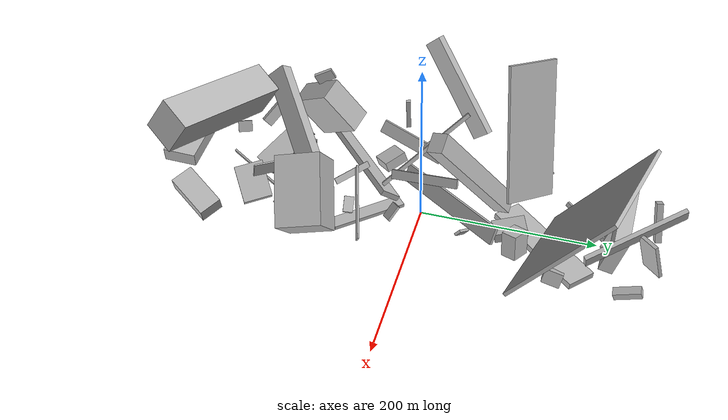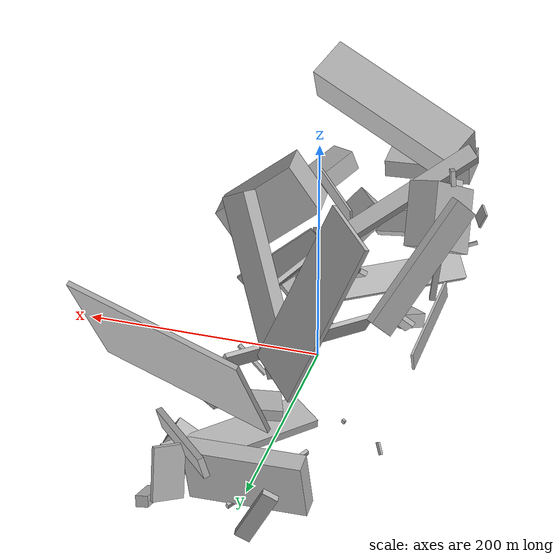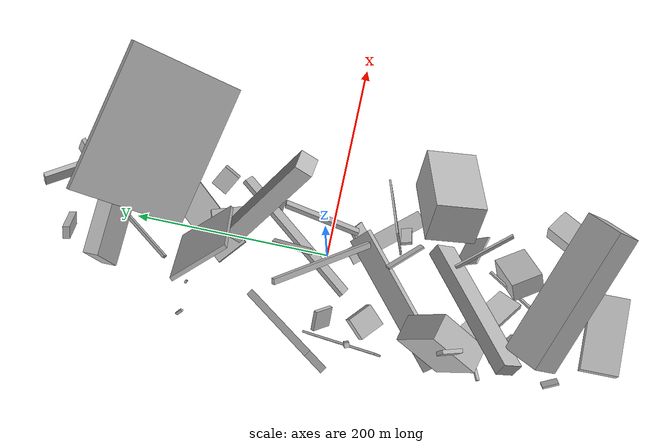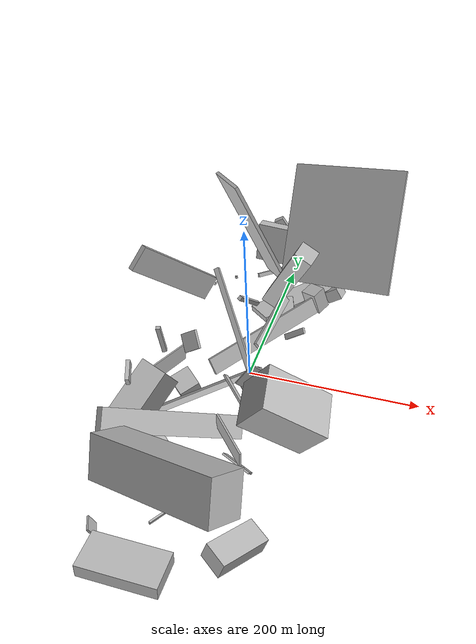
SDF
<sdf version="1.6">
 <world name="default">
  <model name="building_7">
   <static>0</static>
   <pose>41.45888832227331 120.11826827299603 32.789335386937736 -1.3782574865889343 0.18848480692037026 -2.0500685810273795</pose>
   <link name="link">
    <gravity>0</gravity>
    <pose>0 0 10.5 0 0 0</pose>
    <collision name="collision"><geometry><box><size>18 28 21</size></box></geometry></collision>
    <visual name="visual">
     <cast_shadows>0</cast_shadows>
     <geometry><box><size>18 28 21</size></box></geometry>
     <material>
      <script>
       <uri>model://HANNAS_wall/materials/scripts</uri>
       <uri>model://HANNAS_wall/materials/textures</uri>
       <name>vrc/HANNAS_wall</name>
      </script>
     </material>
    </visual>
   </link>
  </model>
  <model name="building_8">
   <static>0</static>
   <pose>34.0836836755247 208.5707553289479 33.629238351588484 1.2905708604022932 0.3872400095972703 -2.054553452792674</pose>
   <link name="link">
    <gravity>0</gravity>
    <pose>0 0 17.5 0 0 0</pose>
    <collision name="collision"><geometry><box><size>11 5 35</size></box></geometry></collision>
    <visual name="visual">
     <cast_shadows>0</cast_shadows>
     <geometry><box><size>11 5 35</size></box></geometry>
     <material>
      <script>
       <uri>model://HANNAS_wall/materials/scripts</uri>
       <uri>model://HANNAS_wall/materials/textures</uri>
       <name>vrc/HANNAS_wall</name>
      </script>
     </material>
    </visual>
   </link>
  </model>
  <model name="building_12">
   <static>0</static>
   <pose>-4.96735389371024 51.39790075821095 64.99824291135502 0.41725744702888623 -0.7304555457033071 0.8065749185657416</pose>
   <link name="link">
    <gravity>0</gravity>
    <pose>0 0 27.5 0 0 0</pose>
    <collision name="collision"><geometry><box><size>5 4 55</size></box></geometry></collision>
    <visual name="visual">
     <cast_shadows>0</cast_shadows>
     <geometry><box><size>5 4 55</size></box></geometry>
     <material>
      <script>
       <uri>model://HANNAS_wall/materials/scripts</uri>
       <uri>model://HANNAS_wall/materials/textures</uri>
       <name>vrc/HANNAS_wall</name>
      </script>
     </material>
    </visual>
   </link>
  </model>
  <model name="building_15">
   <static>0</static>
   <pose>25.864079378184435 -191.29495956231472 25.49021484575989 3.046435150158554 -0.7062382686872735 -2.496962625906016</pose>
   <link name="link">
    <gravity>0</gravity>
    <pose>0 0 11.0 0 0 0</pose>
    <collision name="collision"><geometry><box><size>42 33 22</size></box></geometry></collision>
    <visual name="visual">
     <cast_shadows>0</cast_shadows>
     <geometry><box><size>42 33 22</size></box></geometry>
     <material>
      <script>
       <uri>model://HANNAS_wall/materials/scripts</uri>
       <uri>model://HANNAS_wall/materials/textures</uri>
       <name>vrc/HANNAS_wall</name>
      </script>
     </material>
    </visual>
   </link>
  </model>
  <model name="building_21">
   <static>0</static>
   <pose>20.494141089857177 63.231935937291645 106.6910172469888 2.083222710408784 -0.3469339662020165 1.2776833711083164</pose>
   <link name="link">
    <gravity>0</gravity>
    <pose>0 0 10.5 0 0 0</pose>
    <collision name="collision"><geometry><box><size>18 150 21</size></box></geometry></collision>
    <visual name="visual">
     <cast_shadows>0</cast_shadows>
     <geometry><box><size>18 150 21</size></box></geometry>
     <material>
      <script>
       <uri>model://HANNAS_wall/materials/scripts</uri>
       <uri>model://HANNAS_wall/materials/textures</uri>
       <name>vrc/HANNAS_wall</name>
      </script>
     </material>
    </visual>
   </link>
  </model>
  <model name="building_22">
   <static>0</static>
   <pose>66.6594670400037 182.8771307064637 98.99616147028709 0.9440336586996503 -0.1904546695611779 -0.21939582334426744</pose>
   <link name="link">
    <gravity>0</gravity>
    <pose>0 0 2.0 0 0 0</pose>
    <collision name="collision"><geometry><box><size>150 150 4</size></box></geometry></collision>
    <visual name="visual">
     <cast_shadows>0</cast_shadows>
     <geometry><box><size>150 150 4</size></box></geometry>
     <material>
      <script>
       <uri>model://HANNAS_wall/materials/scripts</uri>
       <uri>model://HANNAS_wall/materials/textures</uri>
       <name>vrc/HANNAS_wall</name>
      </script>
     </material>
    </visual>
   </link>
  </model>
  <model name="building_24">
   <static>0</static>
   <pose>58.82767965866584 -106.76726953632065 54.00887933002582 0.6369152672619559 -0.2053517548228588 1.721045755637067</pose>
   <link name="link">
    <gravity>0</gravity>
    <pose>0 0 23.5 0 0 0</pose>
    <collision name="collision"><geometry><box><size>50 77 47</size></box></geometry></collision>
    <visual name="visual">
     <cast_shadows>0</cast_shadows>
     <geometry><box><size>50 77 47</size></box></geometry>
     <material>
      <script>
       <uri>model://HANNAS_wall/materials/scripts</uri>
       <uri>model://HANNAS_wall/materials/textures</uri>
       <name>vrc/HANNAS_wall</name>
      </script>
     </material>
    </visual>
   </link>
  </model>
  <model name="building_33">
   <static>0</static>
   <pose>66.62721827573576 253.70103874195712 15.122024346969797 -2.847548128330257 1.2033072120656592 1.8973044114304056</pose>
   <link name="link">
    <gravity>0</gravity>
    <pose>0 0 15.0 0 0 0</pose>
    <collision name="collision"><geometry><box><size>9 10 30</size></box></geometry></collision>
    <visual name="visual">
     <cast_shadows>0</cast_shadows>
     <geometry><box><size>9 10 30</size></box></geometry>
     <material>
      <script>
       <uri>model://HANNAS_wall/materials/scripts</uri>
       <uri>model://HANNAS_wall/materials/textures</uri>
       <name>vrc/HANNAS_wall</name>
      </script>
     </material>
    </visual>
   </link>
  </model>
  <model name="building_34">
   <static>0</static>
   <pose>-65.45230393543682 54.48668908053262 73.55328928163836 -0.03186176111053465 -0.8062408724278642 0.9922304105841109</pose>
   <link name="link">
    <gravity>0</gravity>
    <pose>0 0 59.5 0 0 0</pose>
    <collision name="collision"><geometry><box><size>29 7 119</size></box></geometry></collision>
    <visual name="visual">
     <cast_shadows>0</cast_shadows>
     <geometry><box><size>29 7 119</size></box></geometry>
     <material>
      <script>
       <uri>model://HANNAS_wall/materials/scripts</uri>
       <uri>model://HANNAS_wall/materials/textures</uri>
       <name>vrc/HANNAS_wall</name>
      </script>
     </material>
    </visual>
   </link>
  </model>
  <model name="building_36">
   <static>0</static>
   <pose>-71.58749535528145 -110.97548649694622 49.82599644042703 0.31321695044260717 -0.5522279457389033 1.14321460462293</pose>
   <link name="link">
    <gravity>0</gravity>
    <pose>0 0 28.0 0 0 0</pose>
    <collision name="collision"><geometry><box><size>59 28 56</size></box></geometry></collision>
    <visual name="visual">
     <cast_shadows>0</cast_shadows>
     <geometry><box><size>59 28 56</size></box></geometry>
     <material>
      <script>
       <uri>model://HANNAS_wall/materials/scripts</uri>
       <uri>model://HANNAS_wall/materials/textures</uri>
       <name>vrc/HANNAS_wall</name>
      </script>
     </material>
    </visual>
   </link>
  </model>
  <model name="building_37">
   <static>0</static>
   <pose>10.11724520837451 32.97221965001614 34.08726024011277 2.057724107307933 0.11707482976990115 -2.2228255174994023</pose>
   <link name="link">
    <gravity>0</gravity>
    <pose>0 0 2.0 0 0 0</pose>
    <collision name="collision"><geometry><box><size>150 20 4</size></box></geometry></collision>
    <visual name="visual">
     <cast_shadows>0</cast_shadows>
     <geometry><box><size>150 20 4</size></box></geometry>
     <material>
      <script>
       <uri>model://HANNAS_wall/materials/scripts</uri>
       <uri>model://HANNAS_wall/materials/textures</uri>
       <name>vrc/HANNAS_wall</name>
      </script>
     </material>
    </visual>
   </link>
  </model>
  <model name="building_39">
   <static>0</static>
   <pose>0.6470566472135184 -248.68434530747766 86.67142131125479 0.5164116030472424 0.29255163654699873 2.8021077174908338</pose>
   <link name="link">
    <gravity>0</gravity>
    <pose>0 0 22.0 0 0 0</pose>
    <collision name="collision"><geometry><box><size>150 38 44</size></box></geometry></collision>
    <visual name="visual">
     <cast_shadows>0</cast_shadows>
     <geometry><box><size>150 38 44</size></box></geometry>
     <material>
      <script>
       <uri>model://HANNAS_wall/materials/scripts</uri>
       <uri>model://HANNAS_wall/materials/textures</uri>
       <name>vrc/HANNAS_wall</name>
      </script>
     </material>
    </visual>
   </link>
  </model>
  <model name="building_42">
   <static>0</static>
   <pose>-45.25352854146057 132.6801333519304 119.1791029297066 -1.1229210058751007 -1.1705584924178605 -2.8241816121307926</pose>
   <link name="link">
    <gravity>0</gravity>
    <pose>0 0 28.5 0 0 0</pose>
    <collision name="collision"><geometry><box><size>150 4 57</size></box></geometry></collision>
    <visual name="visual">
     <cast_shadows>0</cast_shadows>
     <geometry><box><size>150 4 57</size></box></geometry>
     <material>
      <script>
       <uri>model://HANNAS_wall/materials/scripts</uri>
       <uri>model://HANNAS_wall/materials/textures</uri>
       <name>vrc/HANNAS_wall</name>
      </script>
     </material>
    </visual>
   </link>
  </model>
  <model name="building_48">
   <static>0</static>
   <pose>43.67775492448139 260.26501819850785 26.862530974414693 -0.21539285639404507 0.1513998096955722 -2.399931505658069</pose>
   <link name="link">
    <gravity>0</gravity>
    <pose>0 0 22.0 0 0 0</pose>
    <collision name="collision"><geometry><box><size>26 4 44</size></box></geometry></collision>
    <visual name="visual">
     <cast_shadows>0</cast_shadows>
     <geometry><box><size>26 4 44</size></box></geometry>
     <material>
      <script>
       <uri>model://HANNAS_wall/materials/scripts</uri>
       <uri>model://HANNAS_wall/materials/textures</uri>
       <name>vrc/HANNAS_wall</name>
      </script>
     </material>
    </visual>
   </link>
  </model>
  <model name="building_49">
   <static>0</static>
   <pose>28.048853276304538 10.10852847265361 74.39527984019898 -0.2091593645872243 0.5784950283849167 2.879030681604883</pose>
   <link name="link">
    <gravity>0</gravity>
    <pose>0 0 5.0 0 0 0</pose>
    <collision name="collision"><geometry><box><size>4 76 10</size></box></geometry></collision>
    <visual name="visual">
     <cast_shadows>0</cast_shadows>
     <geometry><box><size>4 76 10</size></box></geometry>
     <material>
      <script>
       <uri>model://HANNAS_wall/materials/scripts</uri>
       <uri>model://HANNAS_wall/materials/textures</uri>
       <name>vrc/HANNAS_wall</name>
      </script>
     </material>
    </visual>
   </link>
  </model>
  <model name="building_50">
   <static>0</static>
   <pose>-76.67155132828033 -133.75679055776348 109.20010032814247 1.4519032992765066 -1.1624077690116237 -1.1415930687145222</pose>
   <link name="link">
    <gravity>0</gravity>
    <pose>0 0 2.0 0 0 0</pose>
    <collision name="collision"><geometry><box><size>13 21 4</size></box></geometry></collision>
    <visual name="visual">
     <cast_shadows>0</cast_shadows>
     <geometry><box><size>13 21 4</size></box></geometry>
     <material>
      <script>
       <uri>model://HANNAS_wall/materials/scripts</uri>
       <uri>model://HANNAS_wall/materials/textures</uri>
       <name>vrc/HANNAS_wall</name>
      </script>
     </material>
    </visual>
   </link>
  </model>
  <model name="building_52">
   <static>0</static>
   <pose>-15.062791142078908 1.1153730630166763 82.48051068723673 2.305550357722177 -0.7330074066793177 -1.8453470527176214</pose>
   <link name="link">
    <gravity>0</gravity>
    <pose>0 0 3.0 0 0 0</pose>
    <collision name="collision"><geometry><box><size>4 122 6</size></box></geometry></collision>
    <visual name="visual">
     <cast_shadows>0</cast_shadows>
     <geometry><box><size>4 122 6</size></box></geometry>
     <material>
      <script>
       <uri>model://HANNAS_wall/materials/scripts</uri>
       <uri>model://HANNAS_wall/materials/textures</uri>
       <name>vrc/HANNAS_wall</name>
      </script>
     </material>
    </visual>
   </link>
  </model>
  <model name="building_53">
   <static>0</static>
   <pose>-33.84201247879642 -149.3581627895657 64.3056996064691 0.6303856770719305 -0.7239598125798495 1.7625775911477737</pose>
   <link name="link">
    <gravity>0</gravity>
    <pose>0 0 7.0 0 0 0</pose>
    <collision name="collision"><geometry><box><size>24 150 14</size></box></geometry></collision>
    <visual name="visual">
     <cast_shadows>0</cast_shadows>
     <geometry><box><size>24 150 14</size></box></geometry>
     <material>
      <script>
       <uri>model://HANNAS_wall/materials/scripts</uri>
       <uri>model://HANNAS_wall/materials/textures</uri>
       <name>vrc/HANNAS_wall</name>
      </script>
     </material>
    </visual>
   </link>
  </model>
  <model name="building_62">
   <static>0</static>
   <pose>21.955251698501662 -29.29971301496933 39.85138276120513 1.6732388194020584 -0.7305639726529239 -0.919596440189512</pose>
   <link name="link">
    <gravity>0</gravity>
    <pose>0 0 75.0 0 0 0</pose>
    <collision name="collision"><geometry><box><size>25 6 150</size></box></geometry></collision>
    <visual name="visual">
     <cast_shadows>0</cast_shadows>
     <geometry><box><size>25 6 150</size></box></geometry>
     <material>
      <script>
       <uri>model://HANNAS_wall/materials/scripts</uri>
       <uri>model://HANNAS_wall/materials/textures</uri>
       <name>vrc/HANNAS_wall</name>
      </script>
     </material>
    </visual>
   </link>
  </model>
  <model name="building_66">
   <static>0</static>
   <pose>10.542347712413092 153.99364912853324 8.910746619338738 1.4678345467816456 -0.010830840417592788 0.8617411571662466</pose>
   <link name="link">
    <gravity>0</gravity>
    <pose>0 0 17.0 0 0 0</pose>
    <collision name="collision"><geometry><box><size>126 7 34</size></box></geometry></collision>
    <visual name="visual">
     <cast_shadows>0</cast_shadows>
     <geometry><box><size>126 7 34</size></box></geometry>
     <material>
      <script>
       <uri>model://HANNAS_wall/materials/scripts</uri>
       <uri>model://HANNAS_wall/materials/textures</uri>
       <name>vrc/HANNAS_wall</name>
      </script>
     </material>
    </visual>
   </link>
  </model>
  <model name="building_72">
   <static>0</static>
   <pose>19.413442538945542 87.12878610867142 11.709614290428373 0.596584569083681 -1.3763904979390882 -1.8360597934005218</pose>
   <link name="link">
    <gravity>0</gravity>
    <pose>0 0 18.5 0 0 0</pose>
    <collision name="collision"><geometry><box><size>11 25 37</size></box></geometry></collision>
    <visual name="visual">
     <cast_shadows>0</cast_shadows>
     <geometry><box><size>11 25 37</size></box></geometry>
     <material>
      <script>
       <uri>model://HANNAS_wall/materials/scripts</uri>
       <uri>model://HANNAS_wall/materials/textures</uri>
       <name>vrc/HANNAS_wall</name>
      </script>
     </material>
    </visual>
   </link>
  </model>
  <model name="building_74">
   <static>0</static>
   <pose>-26.410802282215954 -160.65702881271403 29.20511937772388 0.8206826460790959 -0.9667604366058886 0.20455205610360064</pose>
   <link name="link">
    <gravity>0</gravity>
    <pose>0 0 13.5 0 0 0</pose>
    <collision name="collision"><geometry><box><size>5 67 27</size></box></geometry></collision>
    <visual name="visual">
     <cast_shadows>0</cast_shadows>
     <geometry><box><size>5 67 27</size></box></geometry>
     <material>
      <script>
       <uri>model://HANNAS_wall/materials/scripts</uri>
       <uri>model://HANNAS_wall/materials/textures</uri>
       <name>vrc/HANNAS_wall</name>
      </script>
     </material>
    </visual>
   </link>
  </model>
  <model name="building_78">
   <static>0</static>
   <pose>62.22215322579418 162.05701319750713 17.90239504501308 2.9242109946883885 -0.5816669581069527 0.039926443531390375</pose>
   <link name="link">
    <gravity>0</gravity>
    <pose>0 0 7.5 0 0 0</pose>
    <collision name="collision"><geometry><box><size>19 20 15</size></box></geometry></collision>
    <visual name="visual">
     <cast_shadows>0</cast_shadows>
     <geometry><box><size>19 20 15</size></box></geometry>
     <material>
      <script>
       <uri>model://HANNAS_wall/materials/scripts</uri>
       <uri>model://HANNAS_wall/materials/textures</uri>
       <name>vrc/HANNAS_wall</name>
      </script>
     </material>
    </visual>
   </link>
  </model>
  <model name="building_79">
   <static>0</static>
   <pose>61.01669095939353 -244.2957438950404 19.696736795242913 -0.20308086038258255 -0.272240307829673 -2.11437407895956</pose>
   <link name="link">
    <gravity>0</gravity>
    <pose>0 0 9.5 0 0 0</pose>
    <collision name="collision"><geometry><box><size>54 26 19</size></box></geometry></collision>
    <visual name="visual">
     <cast_shadows>0</cast_shadows>
     <geometry><box><size>54 26 19</size></box></geometry>
     <material>
      <script>
       <uri>model://HANNAS_wall/materials/scripts</uri>
       <uri>model://HANNAS_wall/materials/textures</uri>
       <name>vrc/HANNAS_wall</name>
      </script>
     </material>
    </visual>
   </link>
  </model>
  <model name="building_83">
   <static>0</static>
   <pose>71.27619629044 190.2513767623026 49.976421236520935 1.3065406720978325 -0.2262993217320427 -2.46955018700079</pose>
   <link name="link">
    <gravity>0</gravity>
    <pose>0 0 58.5 0 0 0</pose>
    <collision name="collision"><geometry><box><size>5 16 117</size></box></geometry></collision>
    <visual name="visual">
     <cast_shadows>0</cast_shadows>
     <geometry><box><size>5 16 117</size></box></geometry>
     <material>
      <script>
       <uri>model://HANNAS_wall/materials/scripts</uri>
       <uri>model://HANNAS_wall/materials/textures</uri>
       <name>vrc/HANNAS_wall</name>
      </script>
     </material>
    </visual>
   </link>
  </model>
  <model name="building_87">
   <static>0</static>
   <pose>-62.545802751245816 -15.736426754943594 34.98618311265176 0.6850251690528764 -0.5475683828368358 -1.9643627257309482</pose>
   <link name="link">
    <gravity>0</gravity>
    <pose>0 0 11.0 0 0 0</pose>
    <collision name="collision"><geometry><box><size>4 21 22</size></box></geometry></collision>
    <visual name="visual">
     <cast_shadows>0</cast_shadows>
     <geometry><box><size>4 21 22</size></box></geometry>
     <material>
      <script>
       <uri>model://HANNAS_wall/materials/scripts</uri>
       <uri>model://HANNAS_wall/materials/textures</uri>
       <name>vrc/HANNAS_wall</name>
      </script>
     </material>
    </visual>
   </link>
  </model>
  <model name="building_94">
   <static>0</static>
   <pose>-7.4019976139338635 227.87998936787326 29.56746739948082 0.1933467698630567 -1.35287857972369 1.3542600387368857</pose>
   <link name="link">
    <gravity>0</gravity>
    <pose>0 0 8.0 0 0 0</pose>
    <collision name="collision"><geometry><box><size>51 95 16</size></box></geometry></collision>
    <visual name="visual">
     <cast_shadows>0</cast_shadows>
     <geometry><box><size>51 95 16</size></box></geometry>
     <material>
      <script>
       <uri>model://HANNAS_wall/materials/scripts</uri>
       <uri>model://HANNAS_wall/materials/textures</uri>
       <name>vrc/HANNAS_wall</name>
      </script>
     </material>
    </visual>
   </link>
  </model>
  <model name="building_97">
   <static>0</static>
   <pose>29.10986404842248 -54.71178399473396 11.798989639524876 -0.10548989949038064 0.0070206186112776415 2.2784663497147486</pose>
   <link name="link">
    <gravity>0</gravity>
    <pose>0 0 2.0 0 0 0</pose>
    <collision name="collision"><geometry><box><size>84 17 4</size></box></geometry></collision>
    <visual name="visual">
     <cast_shadows>0</cast_shadows>
     <geometry><box><size>84 17 4</size></box></geometry>
     <material>
      <script>
       <uri>model://HANNAS_wall/materials/scripts</uri>
       <uri>model://HANNAS_wall/materials/textures</uri>
       <name>vrc/HANNAS_wall</name>
      </script>
     </material>
    </visual>
   </link>
  </model>
  <model name="building_101">
   <static>0</static>
   <pose>-89.46437165432235 -35.942817375434814 66.06465118848601 -1.72470316039953 -1.4573897143072332 -2.7006666321765334</pose>
   <link name="link">
    <gravity>0</gravity>
    <pose>0 0 2.5 0 0 0</pose>
    <collision name="collision"><geometry><box><size>35 5 5</size></box></geometry></collision>
    <visual name="visual">
     <cast_shadows>0</cast_shadows>
     <geometry><box><size>35 5 5</size></box></geometry>
     <material>
      <script>
       <uri>model://HANNAS_wall/materials/scripts</uri>
       <uri>model://HANNAS_wall/materials/textures</uri>
       <name>vrc/HANNAS_wall</name>
      </script>
     </material>
    </visual>
   </link>
  </model>
  <model name="building_104">
   <static>0</static>
   <pose>-51.87629271327437 -42.82827136593667 20.837877511009438 -1.8262314653817997 -0.18775900695201622 2.4256212000933592</pose>
   <link name="link">
    <gravity>0</gravity>
    <pose>0 0 12.0 0 0 0</pose>
    <collision name="collision"><geometry><box><size>27 12 24</size></box></geometry></collision>
    <visual name="visual">
     <cast_shadows>0</cast_shadows>
     <geometry><box><size>27 12 24</size></box></geometry>
     <material>
      <script>
       <uri>model://HANNAS_wall/materials/scripts</uri>
       <uri>model://HANNAS_wall/materials/textures</uri>
       <name>vrc/HANNAS_wall</name>
      </script>
     </material>
    </visual>
   </link>
  </model>
  <model name="building_106">
   <static>0</static>
   <pose>9.208160534007956 -76.76428027160716 51.6607337174539 -2.2705284813630606 -0.1879523451159446 2.3449406261475096</pose>
   <link name="link">
    <gravity>0</gravity>
    <pose>0 0 1.0 0 0 0</pose>
    <collision name="collision"><geometry><box><size>42 7 2</size></box></geometry></collision>
    <visual name="visual">
     <cast_shadows>0</cast_shadows>
     <geometry><box><size>42 7 2</size></box></geometry>
     <material>
      <script>
       <uri>model://HANNAS_wall/materials/scripts</uri>
       <uri>model://HANNAS_wall/materials/textures</uri>
       <name>vrc/HANNAS_wall</name>
      </script>
     </material>
    </visual>
   </link>
  </model>
  <model name="building_107">
   <static>0</static>
   <pose>-87.46717038501295 -32.84380173098286 25.314712391861278 1.4508989689022467 -1.2130519383564786 1.580387011640767</pose>
   <link name="link">
    <gravity>0</gravity>
    <pose>0 0 1.0 0 0 0</pose>
    <collision name="collision"><geometry><box><size>20 80 2</size></box></geometry></collision>
    <visual name="visual">
     <cast_shadows>0</cast_shadows>
     <geometry><box><size>20 80 2</size></box></geometry>
     <material>
      <script>
       <uri>model://HANNAS_wall/materials/scripts</uri>
       <uri>model://HANNAS_wall/materials/textures</uri>
       <name>vrc/HANNAS_wall</name>
      </script>
     </material>
    </visual>
   </link>
  </model>
  <model name="building_109">
   <static>0</static>
   <pose>40.49390848815361 57.02081521648481 22.868573730551248 0.9446004578864294 0.6530154405233451 -1.0764865184363395</pose>
   <link name="link">
    <gravity>0</gravity>
    <pose>0 0 1.5 0 0 0</pose>
    <collision name="collision"><geometry><box><size>7 32 3</size></box></geometry></collision>
    <visual name="visual">
     <cast_shadows>0</cast_shadows>
     <geometry><box><size>7 32 3</size></box></geometry>
     <material>
      <script>
       <uri>model://HANNAS_wall/materials/scripts</uri>
       <uri>model://HANNAS_wall/materials/textures</uri>
       <name>vrc/HANNAS_wall</name>
      </script>
     </material>
    </visual>
   </link>
  </model>
  <model name="building_111">
   <static>0</static>
   <pose>46.73329786219084 -58.79998195354531 45.06019397507801 1.4441151718522574 -0.9057981143630084 0.44865468739830294</pose>
   <link name="link">
    <gravity>0</gravity>
    <pose>0 0 1.0 0 0 0</pose>
    <collision name="collision"><geometry><box><size>30 79 2</size></box></geometry></collision>
    <visual name="visual">
     <cast_shadows>0</cast_shadows>
     <geometry><box><size>30 79 2</size></box></geometry>
     <material>
      <script>
       <uri>model://HANNAS_wall/materials/scripts</uri>
       <uri>model://HANNAS_wall/materials/textures</uri>
       <name>vrc/HANNAS_wall</name>
      </script>
     </material>
    </visual>
   </link>
  </model>
  <model name="building_113">
   <static>0</static>
   <pose>-46.81174856132097 -199.422691312722 51.77453392208817 0.9275908218975442 0.3884363524964122 -2.4923901634681234</pose>
   <link name="link">
    <gravity>0</gravity>
    <pose>0 0 21.0 0 0 0</pose>
    <collision name="collision"><geometry><box><size>7 12 42</size></box></geometry></collision>
    <visual name="visual">
     <cast_shadows>0</cast_shadows>
     <geometry><box><size>7 12 42</size></box></geometry>
     <material>
      <script>
       <uri>model://HANNAS_wall/materials/scripts</uri>
       <uri>model://HANNAS_wall/materials/textures</uri>
       <name>vrc/HANNAS_wall</name>
      </script>
     </material>
    </visual>
   </link>
  </model>
  <model name="building_114">
   <static>0</static>
   <pose>-71.44442017374516 -149.02707561616435 11.774600162646223 1.0314904752167866 -1.346391039881413 0.39922913585171604</pose>
   <link name="link">
    <gravity>0</gravity>
    <pose>0 0 1.5 0 0 0</pose>
    <collision name="collision"><geometry><box><size>7 2 3</size></box></geometry></collision>
    <visual name="visual">
     <cast_shadows>0</cast_shadows>
     <geometry><box><size>7 2 3</size></box></geometry>
     <material>
      <script>
       <uri>model://HANNAS_wall/materials/scripts</uri>
       <uri>model://HANNAS_wall/materials/textures</uri>
       <name>vrc/HANNAS_wall</name>
      </script>
     </material>
    </visual>
   </link>
  </model>
  <model name="building_115">
   <static>0</static>
   <pose>-24.3580713466856 -267.94669394135923 30.755517247210232 0.8310770688613615 -1.5041053292955646 0.74930170399501</pose>
   <link name="link">
    <gravity>0</gravity>
    <pose>0 0 19.0 0 0 0</pose>
    <collision name="collision"><geometry><box><size>16 78 38</size></box></geometry></collision>
    <visual name="visual">
     <cast_shadows>0</cast_shadows>
     <geometry><box><size>16 78 38</size></box></geometry>
     <material>
      <script>
       <uri>model://HANNAS_wall/materials/scripts</uri>
       <uri>model://HANNAS_wall/materials/textures</uri>
       <name>vrc/HANNAS_wall</name>
      </script>
     </material>
    </visual>
   </link>
  </model>
  <model name="building_117">
   <static>0</static>
   <pose>-88.26217799389289 135.10716896360992 15.542807532088375 2.259618704803712 -0.8230708835959288 -0.9137041664432844</pose>
   <link name="link">
    <gravity>0</gravity>
    <pose>0 0 1.5 0 0 0</pose>
    <collision name="collision"><geometry><box><size>10 2 3</size></box></geometry></collision>
    <visual name="visual">
     <cast_shadows>0</cast_shadows>
     <geometry><box><size>10 2 3</size></box></geometry>
     <material>
      <script>
       <uri>model://HANNAS_wall/materials/scripts</uri>
       <uri>model://HANNAS_wall/materials/textures</uri>
       <name>vrc/HANNAS_wall</name>
      </script>
     </material>
    </visual>
   </link>
  </model>
  <model name="building_120">
   <static>0</static>
   <pose>31.962113114717894 -75.58546227827775 23.22496125658814 -0.5129707636811401 -0.15810085341505264 -1.3305988128535233</pose>
   <link name="link">
    <gravity>0</gravity>
    <pose>0 0 2.0 0 0 0</pose>
    <collision name="collision"><geometry><box><size>11 18 4</size></box></geometry></collision>
    <visual name="visual">
     <cast_shadows>0</cast_shadows>
     <geometry><box><size>11 18 4</size></box></geometry>
     <material>
      <script>
       <uri>model://HANNAS_wall/materials/scripts</uri>
       <uri>model://HANNAS_wall/materials/textures</uri>
       <name>vrc/HANNAS_wall</name>
      </script>
     </material>
    </visual>
   </link>
  </model>
  <model name="building_123">
   <static>0</static>
   <pose>-21.53187174353503 261.51326658137816 30.496906943426588 -3.0553425986622753 1.0595916669425847 0.2773346498981599</pose>
   <link name="link">
    <gravity>0</gravity>
    <pose>0 0 6.5 0 0 0</pose>
    <collision name="collision"><geometry><box><size>44 7 13</size></box></geometry></collision>
    <visual name="visual">
     <cast_shadows>0</cast_shadows>
     <geometry><box><size>44 7 13</size></box></geometry>
     <material>
      <script>
       <uri>model://HANNAS_wall/materials/scripts</uri>
       <uri>model://HANNAS_wall/materials/textures</uri>
       <name>vrc/HANNAS_wall</name>
      </script>
     </material>
    </visual>
   </link>
  </model>
  <model name="building_126">
   <static>0</static>
   <pose>48.51808112984423 -176.36133704338872 66.7252922331975 -1.705859814481687 0.10018327511665656 0.6818272450892499</pose>
   <link name="link">
    <gravity>0</gravity>
    <pose>0 0 32.0 0 0 0</pose>
    <collision name="collision"><geometry><box><size>2 16 64</size></box></geometry></collision>
    <visual name="visual">
     <cast_shadows>0</cast_shadows>
     <geometry><box><size>2 16 64</size></box></geometry>
     <material>
      <script>
       <uri>model://HANNAS_wall/materials/scripts</uri>
       <uri>model://HANNAS_wall/materials/textures</uri>
       <name>vrc/HANNAS_wall</name>
      </script>
     </material>
    </visual>
   </link>
  </model>
  <model name="building_128">
   <static>0</static>
   <pose>-37.79638998322311 160.36928769901766 19.262228801997846 1.7992770439486674 0.3497873872908608 2.5973168574345076</pose>
   <link name="link">
    <gravity>0</gravity>
    <pose>0 0 40.0 0 0 0</pose>
    <collision name="collision"><geometry><box><size>3 5 80</size></box></geometry></collision>
    <visual name="visual">
     <cast_shadows>0</cast_shadows>
     <geometry><box><size>3 5 80</size></box></geometry>
     <material>
      <script>
       <uri>model://HANNAS_wall/materials/scripts</uri>
       <uri>model://HANNAS_wall/materials/textures</uri>
       <name>vrc/HANNAS_wall</name>
      </script>
     </material>
    </visual>
   </link>
  </model>
  <model name="building_129">
   <static>0</static>
   <pose>16.5076341358115 -165.81743617802152 14.576843721217854 1.5233293175132545 0.22368033521191716 -0.5564798737361767</pose>
   <link name="link">
    <gravity>0</gravity>
    <pose>0 0 40.0 0 0 0</pose>
    <collision name="collision"><geometry><box><size>2 4 80</size></box></geometry></collision>
    <visual name="visual">
     <cast_shadows>0</cast_shadows>
     <geometry><box><size>2 4 80</size></box></geometry>
     <material>
      <script>
       <uri>model://HANNAS_wall/materials/scripts</uri>
       <uri>model://HANNAS_wall/materials/textures</uri>
       <name>vrc/HANNAS_wall</name>
      </script>
     </material>
    </visual>
   </link>
  </model>
  <model name="building_132">
   <static>0</static>
   <pose>-58.56409507841557 131.42492810113595 31.80488591468675 -0.033274824420915776 -0.26245963343489 -0.4887330952074973</pose>
   <link name="link">
    <gravity>0</gravity>
    <pose>0 0 1.5 0 0 0</pose>
    <collision name="collision"><geometry><box><size>3 2 3</size></box></geometry></collision>
    <visual name="visual">
     <cast_shadows>0</cast_shadows>
     <geometry><box><size>3 2 3</size></box></geometry>
     <material>
      <script>
       <uri>model://HANNAS_wall/materials/scripts</uri>
       <uri>model://HANNAS_wall/materials/textures</uri>
       <name>vrc/HANNAS_wall</name>
      </script>
     </material>
    </visual>
   </link>
  </model>
  <model name="building_133">
   <static>0</static>
   <pose>34.65234702340817 -153.15420512673685 29.430421090641694 -2.7600472175295097 -0.5333082408892431 1.086080274792163</pose>
   <link name="link">
    <gravity>0</gravity>
    <pose>0 0 16.0 0 0 0</pose>
    <collision name="collision"><geometry><box><size>2 33 32</size></box></geometry></collision>
    <visual name="visual">
     <cast_shadows>0</cast_shadows>
     <geometry><box><size>2 33 32</size></box></geometry>
     <material>
      <script>
       <uri>model://HANNAS_wall/materials/scripts</uri>
       <uri>model://HANNAS_wall/materials/textures</uri>
       <name>vrc/HANNAS_wall</name>
      </script>
     </material>
    </visual>
   </link>
  </model>
  <model name="building_134">
   <static>0</static>
   <pose>27.80036962924392 -27.833837778785988 22.153136937614327 -2.4224815137250633 -0.31582442388088894 0.7104439002283435</pose>
   <link name="link">
    <gravity>0</gravity>
    <pose>0 0 1.5 0 0 0</pose>
    <collision name="collision"><geometry><box><size>14 19 3</size></box></geometry></collision>
    <visual name="visual">
     <cast_shadows>0</cast_shadows>
     <geometry><box><size>14 19 3</size></box></geometry>
     <material>
      <script>
       <uri>model://HANNAS_wall/materials/scripts</uri>
       <uri>model://HANNAS_wall/materials/textures</uri>
       <name>vrc/HANNAS_wall</name>
      </script>
     </material>
    </visual>
   </link>
  </model>
  <model name="building_137">
   <static>0</static>
   <pose>-80.25343258029332 -165.36179500855394 21.773029591141615 -1.9039511661424346 -0.22895127505495758 -2.7226538720285856</pose>
   <link name="link">
    <gravity>0</gravity>
    <pose>0 0 1.5 0 0 0</pose>
    <collision name="collision"><geometry><box><size>32 3 3</size></box></geometry></collision>
    <visual name="visual">
     <cast_shadows>0</cast_shadows>
     <geometry><box><size>32 3 3</size></box></geometry>
     <material>
      <script>
       <uri>model://HANNAS_wall/materials/scripts</uri>
       <uri>model://HANNAS_wall/materials/textures</uri>
       <name>vrc/HANNAS_wall</name>
      </script>
     </material>
    </visual>
   </link>
  </model>
  <model name="building_139">
   <static>0</static>
   <pose>-83.67646925853421 -246.98448020424067 13.570942641964589 -3.0590716090656276 0.4146828834169525 -2.666236966228076</pose>
   <link name="link">
    <gravity>0</gravity>
    <pose>0 0 7.0 0 0 0</pose>
    <collision name="collision"><geometry><box><size>2 17 14</size></box></geometry></collision>
    <visual name="visual">
     <cast_shadows>0</cast_shadows>
     <geometry><box><size>2 17 14</size></box></geometry>
     <material>
      <script>
       <uri>model://HANNAS_wall/materials/scripts</uri>
       <uri>model://HANNAS_wall/materials/textures</uri>
       <name>vrc/HANNAS_wall</name>
      </script>
     </material>
    </visual>
   </link>
  </model>
 </world>
</sdf>
